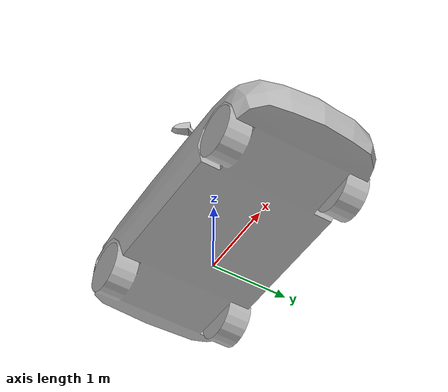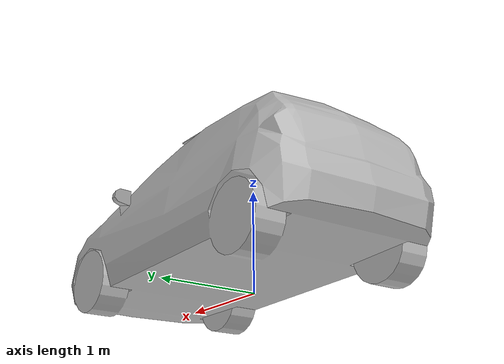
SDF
<?xml version="1.0" ?>
<sdf version="1.6">
  <model name="hatchback_red">
    <static>false</static>

    <plugin name="circular_motion" filename="libcircular_motion_plugin.so"/>

    <link name="car_body">
      <collision name="collision">
        <pose>0 0 0 0 0 1.57079632679</pose>
        <geometry>
          <mesh>
            <scale>0.0254 0.0254 0.0254</scale>
            <uri>model://hatchback_red/meshes/hatchback.obj</uri>
          </mesh>
        </geometry>
      </collision>

      <visual name="car_visual">
        <pose>0 0 0 0 0 1.57079632679</pose>
        <geometry>
          <mesh>
            <scale>0.0254 0.0254 0.0254</scale>
            <uri>model://hatchback_red/meshes/hatchback.obj</uri>
          </mesh>
        </geometry>
      </visual>

      <visual name="aruco_marker">
        <pose>0 0 1.56 0 0 0</pose>
        <geometry>
          <box>
            <size>1.0 1.0 0.01</size>
          </box>
        </geometry>
        <material>
          <script>
            <uri>model://hatchback_red/materials/scripts</uri>
            <uri>model://hatchback_red/materials/textures</uri>
            <name>Gazebo/ArucoMarker</name>
          </script>
        </material>
      </visual>
    </link>
  </model>
</sdf>
